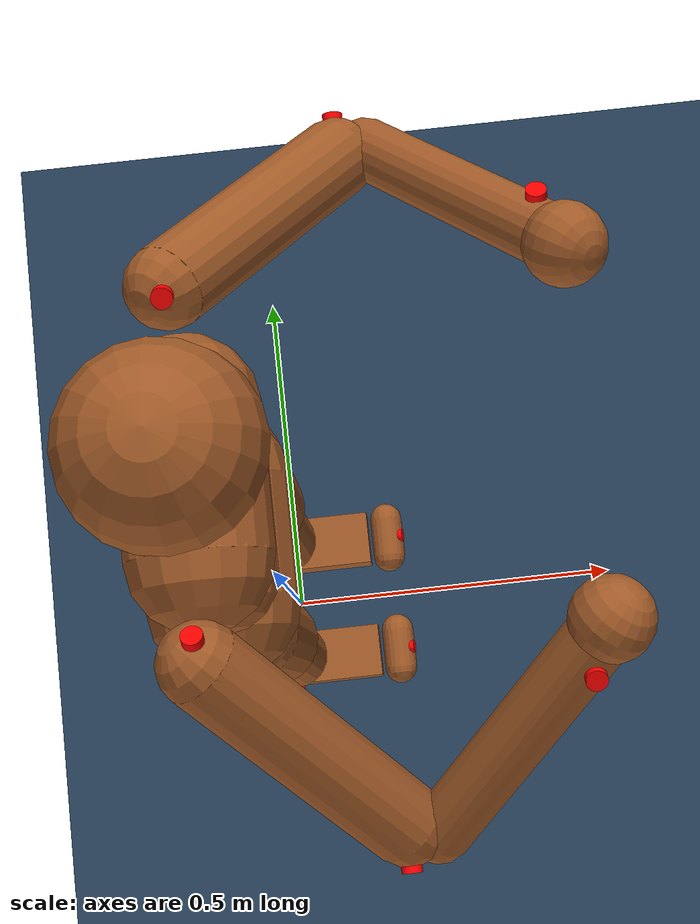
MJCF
<mujoco model="human_marina">
	<option timestep="0.002" integrator="RK4"/>

	<visual>
    		<map force="0.1" zfar="30"/>
    		<rgba haze="0.15 0.25 0.35 1"/>
    		<global offwidth="2560" offheight="1440" elevation="-20" azimuth="120"/>
  	</visual>

  	<statistic center="0 0 0.7"/>

  	<asset>
    		<texture type="skybox" builtin="gradient" rgb1=".3 .5 .7" rgb2="0 0 0" width="32" height="512"/>
    		<texture name="body" type="cube" builtin="flat" mark="cross" width="128" height="128" rgb1="0.8 0.6 0.4" rgb2="0.8 0.6 0.4" markrgb="1 1 1" random="0.01"/>
    		<material name="body" texture="body" texuniform="true" rgba="0.8 0.6 .4 1"/>
    		<texture name="grid" type="2d" builtin="checker" width="512" height="512" rgb1=".1 .2 .3" rgb2=".2 .3 .4"/>
    		<material name="grid" texture="grid" texrepeat="1 1" texuniform="true" reflectance=".2"/>
  	</asset>

  	<default>
    		<motor ctrlrange="-1 1" ctrllimited="true"/>
    		<default class="body">

      			<!-- geoms -->
      			<geom type="capsule" condim="1" friction=".7" solimp=".9 .99 .003" solref=".015 1" material="body" group="1"/>
      			<default class="thigh">
        			<geom size=".06"/>
      			</default>
      			<default class="shin">
        			<geom fromto="0 0 0 0 0 -.3"  size=".049"/>
      			</default>
      			<default class="foot">
        			<geom type="box" size=".1 .04 .03"/>
      			</default>
      			<default class="toes">
        			<geom size=".025 .03"/>
      			</default>
      			<default class="arm_upper">
        			<geom size=".04"/>
      			</default>
      			<default class="arm_lower">
        			<geom size=".031"/>
      			</default>
      			<default class="hand">
        			<geom type="sphere" size=".04"/>
      			</default>

      			<!-- joints -->
      			<joint type="hinge" damping=".2" stiffness="1" armature=".01" limited="true" solimplimit="0 .99 .01"/>
      			<default class="joint_big">
        			<joint damping="5" stiffness="10"/>
        			<default class="hip_x">
          				<joint range="-30 10"/>
        			</default>
        			<default class="hip_z">
          				<joint range="-60 35"/>
        			</default>
        			<default class="hip_y">
          				<joint axis="0 1 0" range="-150 20"/>
        			</default>
        			<default class="joint_big_stiff">
          				<joint stiffness="20"/>
        			</default>
      			</default>
      			<default class="knee">
        			<joint pos="0 0 .02" axis="0 -1 0" range="-160 2"/>
      			</default>
      			<default class="ankle">
        			<joint range="-50 50"/>
        			<default class="ankle_y">
          				<joint pos="0 0 .08" axis="0 1 0" stiffness="6"/>
        			</default>
        			<default class="ankle_x">
          				<joint pos="0 0 .04" stiffness="3"/>
        			</default>
      			</default>
      			<default class="shoulder">
        			<joint range="-85 60"/>
      			</default>
			<default class="neck">
				<joint damping="5" stiffness="10"/>
				<default class="neck_xy">
					<joint range="-45 45"/>
				</default>
				<default class="neck_z">
					<joint range="-90 90"/>
				</default>
      			</default>
      			<default class="elbow">
        			<joint range="-100 50" stiffness="0"/>
      			</default>

			<site type="cylinder" rgba="1 0 0 1" size=".01 .005" euler="90 0 0"/>

    		</default>

  	</default>

  	<worldbody>
    		<geom name="floor" size="0 0 .05" type="plane" material="grid" condim="3"/>
    		<light name="spotlight" mode="targetbodycom" target="torso" diffuse=".8 .8 .8" specular="0.3 0.3 0.3" pos="0 -6 4" cutoff="30"/>
    		<body name="torso" pos="0 0 1.282" childclass="body">
      			<light name="top" pos="0 0 2" mode="trackcom"/>
      			<camera name="back" pos="-3 0 1" xyaxes="0 -1 0 1 0 2" mode="trackcom"/>
      			<camera name="side" pos="0 -3 1" xyaxes="1 0 0 0 1 2" mode="trackcom"/>
      			<freejoint name="root"/>
      			<geom name="torso" fromto="0 -.07 0 0 .07 0" size=".07"/>
      			<geom name="waist_upper" fromto="-.01 -.06 -.12 -.01 .06 -.12" size=".06"/>
      			<body name="head" pos="0 0 .19">
				<joint name="neck_x" pos="0 0 -.045" axis="1 0 0" class="neck_xy"/>
				<joint name="neck_y" pos="0 0 -.045" axis="0 1 0" class="neck_xy"/>
        			<joint name="neck_z" pos="0 0 -.045" axis="0 0 1" class="neck_z"/>
        			<geom name="head" type="sphere" size=".09"/>
        			<camera name="egocentric" pos=".09 0 0" xyaxes="0 -1 0 .1 0 1" fovy="80"/>
      			</body>

      			<body name="waist_lower" pos="-.01 0 -.26">
        			<geom name="waist_lower" fromto="0 -.06 0 0 .06 0" size=".06"/>
        			<joint name="abdomen_z" pos="0 0 .065" axis="0 0 1" range="-45 45" class="joint_big_stiff"/>
        			<joint name="abdomen_y" pos="0 0 .065" axis="0 1 0" range="-75 30" class="joint_big"/>
        			<body name="pelvis" pos="0 0 -.165">
          				<joint name="abdomen_x" pos="0 0 .1" axis="1 0 0" range="-35 35" class="joint_big"/>
          				<geom name="butt" fromto="-.02 -.07 0 -.02 .07 0" size=".09"/>
					<site name="l_hip_pos" euler="100 -20 0" pos=".01 .15 .023"/>
					<site name="r_hip_pos" euler="80 20 0" pos=".01 -.15 .023"/>
          				<body name="thigh_right" pos="0 -.1 -.04">
            					<joint name="hip_x_right" axis="1 0 0" class="hip_x"/>
            					<joint name="hip_z_right" axis="0 0 1" class="hip_z"/>
            					<joint name="hip_y_right" class="hip_y"/>
            					<geom name="thigh_right" fromto="0 0 0 0 .01 -.34" class="thigh"/>
						<body name="shin_right" pos="0 .01 -.4">
              						<joint name="knee_right" class="knee"/>
              						<geom name="shin_right" class="shin"/>
              						<site name="r_knee_pos" euler="90 0 0" pos="0 -.05 .02"/>
							<body name="foot_right" pos="0 0 -.385">
                						<joint name="ankle_y_right" class="ankle_y"/>
                						<joint name="ankle_x_right" class="ankle_x" axis="1 0 .5"/>
                						<geom name="foot_right" pos=".03 0 0" class="foot"/>
            					        	<site name="r_ankle_pos" euler="90 0 0" pos="0 -.05 .08"/>
            					        	<site name="r_heel_pos" euler="0 90 0" pos="-.07 0 .02"/>
								<body name="right_toes" pos=".16 0 -.005">
									<geom name="right_toes" euler="90 0 0" class="toes"/>
									<joint name="right_toes" type="hinge" range="-30 20" axis="0 1 0"/>
									<site name="r_metatarsal_pos" euler="0 80 0" pos=".02 0 .01"/>
								</body>
              						</body>
						</body>
          				</body>
          				<body name="thigh_left" pos="0 .1 -.04">
            					<joint name="hip_x_left" axis="-1 0 0" class="hip_x"/>
            					<joint name="hip_z_left" axis="0 0 -1" class="hip_z"/>
            					<joint name="hip_y_left" class="hip_y"/>
            					<geom name="thigh_left" fromto="0 0 0 0 -.01 -.34" class="thigh"/>
            					<body name="shin_left" pos="0 -.01 -.4">
              						<joint name="knee_left" class="knee"/>
              						<geom name="shin_left" fromto="0 0 0 0 0 -.3" class="shin"/>
              						<site name="l_knee_pos" euler="90 0 0" pos="0 .05 .02"/>
              						<body name="foot_left" pos="0 0 -.385">
                						<joint name="ankle_y_left" class="ankle_y"/>
                						<joint name="ankle_x_left" class="ankle_x" axis="-1 0 -.5"/>
                						<geom name="foot_left" pos=".03 0 0" class="foot"/>
								<site name="l_ankle_pos" euler="90 0 0" pos="0 .05 .08"/>
            					        	<site name="l_heel_pos" euler="0 90 0" pos="-.07 0 .02"/>
								<body name="left_toes" pos=".16 0 -.005">
									<geom name="left_toes" euler="90 0 0" class="toes"/>
									<joint name="left_toes" type="hinge" range="-30 20" axis="0 1 0"/>
									<site name="l_metatarsal_pos" euler="0 80 0" pos=".02 0 .01"/>
								</body>
              						</body>
            					</body>
          				</body>
        			</body>
      			</body>
      			<body name="upper_arm_right" pos="0 -.17 .06">
        			<joint name="shoulder1_right" axis="2 1 1"  class="shoulder"/>
        			<joint name="shoulder2_right" axis="0 -1 1" class="shoulder"/>
        			<geom name="upper_arm_right" fromto="0 0 0 .16 -.16 -.16" class="arm_upper"/>
				<site name="r_shoulder_pos" euler="-30 0 0" pos="0 .02 .038"/>
        			<body name="lower_arm_right" pos=".18 -.18 -.18">
          				<joint name="elbow_right" axis="0 -1 1" class="elbow"/>
          				<geom name="lower_arm_right" fromto=".01 .01 .01 .17 .17 .17" class="arm_lower"/>
          				<body name="hand_right" pos=".18 .18 .18">
            					<geom name="hand_right" zaxis="1 1 1" class="hand"/>
          				</body>
					<site name="r_wrist_pos" euler="30 0 0" pos=".16 .13 .18"/>
        			</body>
				<site name="r_elbow_pos" pos=".16 -.2 -.16"/>
      			</body>
      			<body name="upper_arm_left" pos="0 .17 .06">
        			<joint name="shoulder1_left" axis="-2 1 -1" class="shoulder"/>
        			<joint name="shoulder2_left" axis="0 -1 -1"  class="shoulder"/>
        			<geom name="upper_arm_left" fromto="0 0 0 .16 .16 -.16" class="arm_upper"/>
				<site name="l_shoulder_pos" euler="30 0 0" pos="0 -.02 .038"/>
        			<body name="lower_arm_left" pos=".18 .18 -.18">
          				<joint name="elbow_left" axis="0 -1 -1" class="elbow"/>
          				<geom name="lower_arm_left" fromto=".01 -.01 .01 .17 -.17 .17" class="arm_lower"/>
         				<body name="hand_left" pos=".18 -.18 .18">
            					<geom name="hand_left" zaxis="1 -1 1" class="hand"/>
          				</body>
					<site name="l_wrist_pos" euler="-30 0 0" pos=".16 -.13 .18"/>
        			</body>
				<site name="l_elbow_pos" pos=".16 .2 -.16"/>
      			</body>
    		</body>
  	</worldbody>

  	<contact>
    		<exclude body1="waist_lower" body2="thigh_right"/>
    		<exclude body1="waist_lower" body2="thigh_left"/>
  	</contact>

  	<tendon>
    		<fixed name="hamstring_right" limited="true" range="-0.3 2">
      			<joint joint="hip_y_right" coef=".5"/>
      			<joint joint="knee_right" coef="-.5"/>
    		</fixed>
    		<fixed name="hamstring_left" limited="true" range="-0.3 2">
      			<joint joint="hip_y_left" coef=".5"/>
      			<joint joint="knee_left" coef="-.5"/>
    		</fixed>
  	</tendon>

	<actuator>
    		<motor name="neck_x"          gear="30"  joint="neck_x"/>
    		<motor name="neck_y"          gear="30"  joint="neck_y"/>
    		<motor name="neck_z"          gear="30"  joint="neck_z"/>
    		<motor name="abdomen_z"       gear="40"  joint="abdomen_z"/>
    		<motor name="abdomen_y"       gear="40"  joint="abdomen_y"/>
    		<motor name="abdomen_x"       gear="40"  joint="abdomen_x"/>
    		<motor name="hip_x_right"     gear="40"  joint="hip_x_right"/>
    		<motor name="hip_z_right"     gear="40"  joint="hip_z_right"/>
    		<motor name="hip_y_right"     gear="120" joint="hip_y_right"/>
    		<motor name="knee_right"      gear="80"  joint="knee_right"/>
    		<motor name="ankle_y_right"   gear="20"  joint="ankle_y_right"/>
    		<motor name="ankle_x_right"   gear="20"  joint="ankle_x_right"/>
    		<motor name="right_toes"      gear="20"  joint="right_toes"/>
    		<motor name="hip_x_left"      gear="40"  joint="hip_x_left"/>
    		<motor name="hip_z_left"      gear="40"  joint="hip_z_left"/>
    		<motor name="hip_y_left"      gear="120" joint="hip_y_left"/>
    		<motor name="knee_left"       gear="80"  joint="knee_left"/>
    		<motor name="ankle_y_left"    gear="20"  joint="ankle_y_left"/>
    		<motor name="ankle_x_left"    gear="20"  joint="ankle_x_left"/>
    		<motor name="left_toes"       gear="20"  joint="left_toes"/>
    		<motor name="shoulder1_right" gear="20"  joint="shoulder1_right"/>
    		<motor name="shoulder2_right" gear="20"  joint="shoulder2_right"/>
    		<motor name="elbow_right"     gear="40"  joint="elbow_right"/>
    		<motor name="shoulder1_left"  gear="20"  joint="shoulder1_left"/>
    		<motor name="shoulder2_left"  gear="20"  joint="shoulder2_left"/>
    		<motor name="elbow_left"      gear="40"  joint="elbow_left"/>
  	</actuator>

</mujoco>
